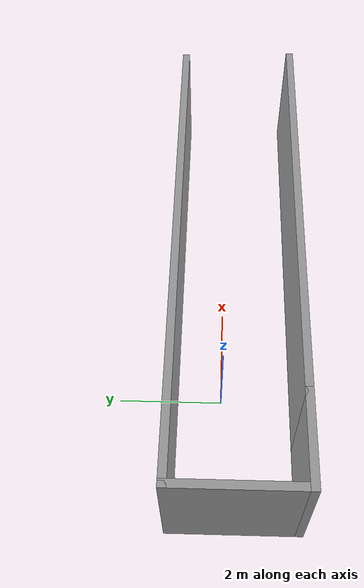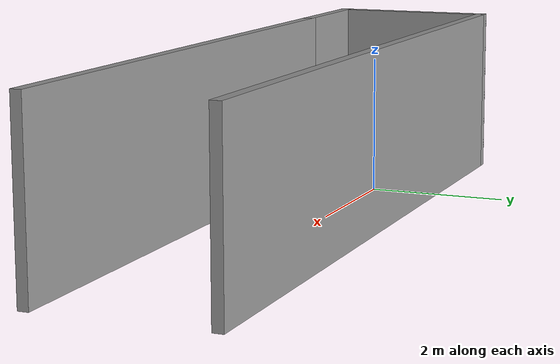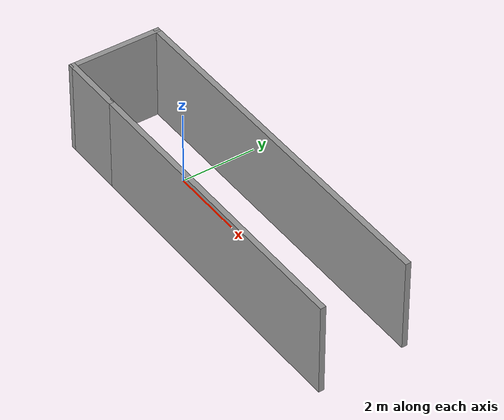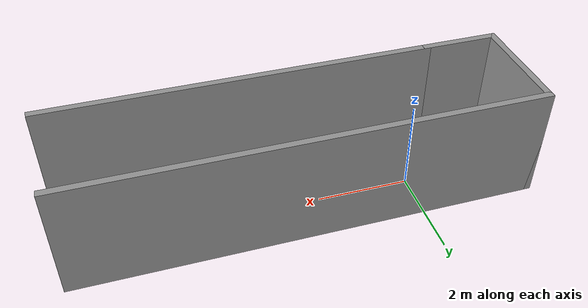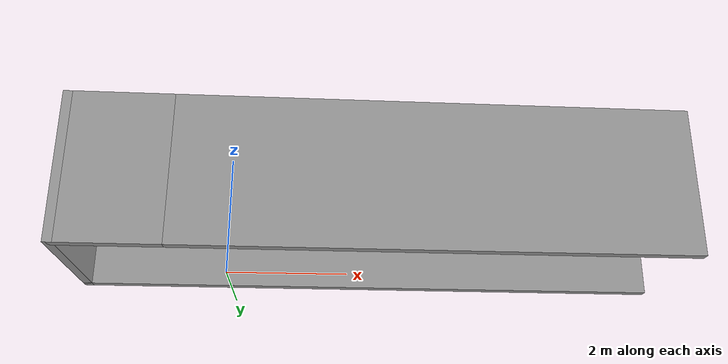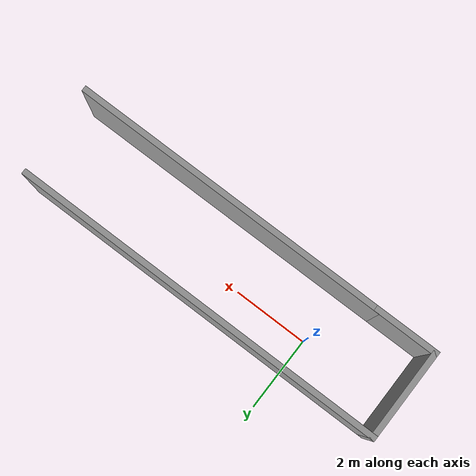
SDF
<?xml version='1.0'?>
<sdf version='1.7'>
  <model name='Untitled'>
    <pose>2.505 -0.245 0 0 -0 0</pose>
    <link name='Wall_1'>
      <collision name='Wall_1_Collision'>
        <geometry>
          <box>
            <size>8.5 0.15 2.5</size>
          </box>
        </geometry>
        <pose>0 0 1.25 0 -0 0</pose>
      </collision>
      <visual name='Wall_1_Visual'>
        <pose>0 0 1.25 0 -0 0</pose>
        <geometry>
          <box>
            <size>8.5 0.15 2.5</size>
          </box>
        </geometry>
        <material>
          <script>
            <uri>file://media/materials/scripts/gazebo.material</uri>
            <name>Gazebo/Grey</name>
          </script>
          <ambient>1 1 1 1</ambient>
        </material>
        <meta>
          <layer>0</layer>
        </meta>
      </visual>
      <pose>0.8 -1.175 0 0 -0 0</pose>
    </link>
    <link name='Wall_4'>
      <collision name='Wall_4_Collision'>
        <geometry>
          <box>
            <size>1.75 0.15 2.5</size>
          </box>
        </geometry>
        <pose>0 0 1.25 0 -0 0</pose>
      </collision>
      <visual name='Wall_4_Visual'>
        <pose>0 0 1.25 0 -0 0</pose>
        <geometry>
          <box>
            <size>1.75 0.15 2.5</size>
          </box>
        </geometry>
        <material>
          <script>
            <uri>file://media/materials/scripts/gazebo.material</uri>
            <name>Gazebo/Grey</name>
          </script>
          <ambient>1 1 1 1</ambient>
        </material>
        <meta>
          <layer>0</layer>
        </meta>
      </visual>
      <pose>-4.175 -1.175 0 0 -0 3.14159</pose>
    </link>
    <link name='Wall_5'>
      <collision name='Wall_5_Collision'>
        <geometry>
          <box>
            <size>2.5 0.15 2.5</size>
          </box>
        </geometry>
        <pose>0 0 1.25 0 -0 0</pose>
      </collision>
      <visual name='Wall_5_Visual'>
        <pose>0 0 1.25 0 -0 0</pose>
        <geometry>
          <box>
            <size>2.5 0.15 2.5</size>
          </box>
        </geometry>
        <material>
          <script>
            <uri>file://media/materials/scripts/gazebo.material</uri>
            <name>Gazebo/Grey</name>
          </script>
          <ambient>1 1 1 1</ambient>
        </material>
        <meta>
          <layer>0</layer>
        </meta>
      </visual>
      <pose>-4.975 0 0 0 -0 1.5708</pose>
    </link>
    <link name='Wall_6'>
      <collision name='Wall_6_Collision'>
        <geometry>
          <box>
            <size>10 0.15 2.5</size>
          </box>
        </geometry>
        <pose>0 0 1.25 0 -0 0</pose>
      </collision>
      <visual name='Wall_6_Visual'>
        <pose>0 0 1.25 0 -0 0</pose>
        <geometry>
          <box>
            <size>10 0.15 2.5</size>
          </box>
        </geometry>
        <material>
          <script>
            <uri>file://media/materials/scripts/gazebo.material</uri>
            <name>Gazebo/Grey</name>
          </script>
          <ambient>1 1 1 1</ambient>
        </material>
        <meta>
          <layer>0</layer>
        </meta>
      </visual>
      <pose>-0.05 1.175 0 0 -0 0</pose>
    </link>
    <static>1</static>
  </model>
</sdf>
